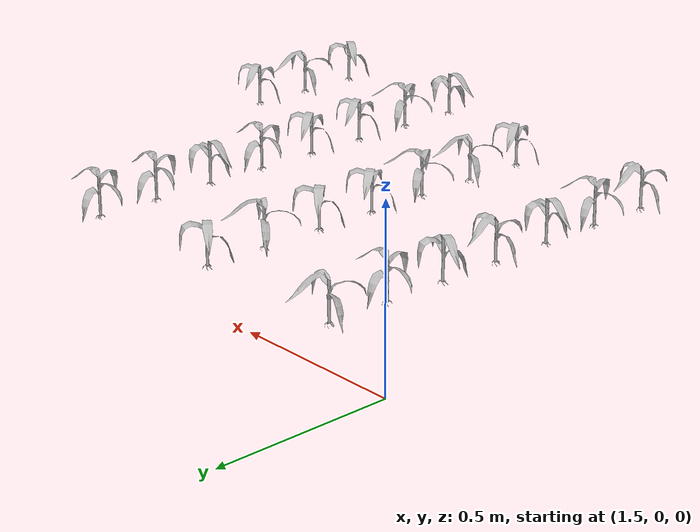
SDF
<sdf version="1.7">
 <world name="default">
  <model name="maize_1.8369094047028893_-1.2899999999999996">
   <static>1</static>
   <link name="link">
    <inertial>
     <mass>0.2</mass>
     <inertia>
      <ixx>0.166667</ixx>
      <ixy>0</ixy>
      <ixz>0</ixz>
      <iyy>0.166667</iyy>
      <iyz>0</iyz>
      <izz>0.166667</izz>
     </inertia>
    </inertial>
    <collision name="collision">
     <geometry><mesh><uri>model://corn_3/meshes/corn.dae</uri><scale>0.25 0.25 0.25</scale></mesh></geometry>
     <surface>
      <friction><ode><mu>0</mu><mu2>0</mu2></ode></friction>
      <contact><ode><kp>0</kp><kd>0</kd><max_vel>0</max_vel><min_depth>0.002</min_depth></ode></contact>
     </surface>
    </collision>
    <visual name="visual">
     <geometry><mesh><uri>model://corn_3/meshes/corn.dae</uri><scale>0.25 0.25 0.25</scale></mesh></geometry>
    </visual>
    <velocity_decay><linear>0</linear><angular>0</angular></velocity_decay>
   </link>
   <pose>1.83691 -1.29 0.05 0 -0 1.59255</pose>
  </model>
  <model name="maize_1.8369094047028893_-1.0949999999999998">
   <static>1</static>
   <link name="link">
    <inertial>
     <mass>0.2</mass>
     <inertia>
      <ixx>0.166667</ixx>
      <ixy>0</ixy>
      <ixz>0</ixz>
      <iyy>0.166667</iyy>
      <iyz>0</iyz>
      <izz>0.166667</izz>
     </inertia>
    </inertial>
    <collision name="collision">
     <geometry><mesh><uri>model://corn_3/meshes/corn.dae</uri><scale>0.25 0.25 0.25</scale></mesh></geometry>
     <surface>
      <friction><ode><mu>0</mu><mu2>0</mu2></ode></friction>
      <contact><ode><kp>0</kp><kd>0</kd><max_vel>0</max_vel><min_depth>0.002</min_depth></ode></contact>
     </surface>
    </collision>
    <visual name="visual">
     <geometry><mesh><uri>model://corn_3/meshes/corn.dae</uri><scale>0.25 0.25 0.25</scale></mesh></geometry>
    </visual>
    <velocity_decay><linear>0</linear><angular>0</angular></velocity_decay>
   </link>
   <pose>1.83691 -1.095 0.05 0 -0 0.184959</pose>
  </model>
  <model name="maize_1.8369094047028893_-0.8999999999999995">
   <static>1</static>
   <link name="link">
    <inertial>
     <mass>0.2</mass>
     <inertia>
      <ixx>0.166667</ixx>
      <ixy>0</ixy>
      <ixz>0</ixz>
      <iyy>0.166667</iyy>
      <iyz>0</iyz>
      <izz>0.166667</izz>
     </inertia>
    </inertial>
    <collision name="collision">
     <geometry><mesh><uri>model://corn_3/meshes/corn.dae</uri><scale>0.25 0.25 0.25</scale></mesh></geometry>
     <surface>
      <friction><ode><mu>0</mu><mu2>0</mu2></ode></friction>
      <contact><ode><kp>0</kp><kd>0</kd><max_vel>0</max_vel><min_depth>0.002</min_depth></ode></contact>
     </surface>
    </collision>
    <visual name="visual">
     <geometry><mesh><uri>model://corn_3/meshes/corn.dae</uri><scale>0.25 0.25 0.25</scale></mesh></geometry>
    </visual>
    <velocity_decay><linear>0</linear><angular>0</angular></velocity_decay>
   </link>
   <pose>1.83691 -0.9 0.05 0 -0 2.9175</pose>
  </model>
  <model name="maize_1.8369094047028893_-0.7050000000000001">
   <static>1</static>
   <link name="link">
    <inertial>
     <mass>0.2</mass>
     <inertia>
      <ixx>0.166667</ixx>
      <ixy>0</ixy>
      <ixz>0</ixz>
      <iyy>0.166667</iyy>
      <iyz>0</iyz>
      <izz>0.166667</izz>
     </inertia>
    </inertial>
    <collision name="collision">
     <geometry><mesh><uri>model://corn_3/meshes/corn.dae</uri><scale>0.25 0.25 0.25</scale></mesh></geometry>
     <surface>
      <friction><ode><mu>0</mu><mu2>0</mu2></ode></friction>
      <contact><ode><kp>0</kp><kd>0</kd><max_vel>0</max_vel><min_depth>0.002</min_depth></ode></contact>
     </surface>
    </collision>
    <visual name="visual">
     <geometry><mesh><uri>model://corn_3/meshes/corn.dae</uri><scale>0.25 0.25 0.25</scale></mesh></geometry>
    </visual>
    <velocity_decay><linear>0</linear><angular>0</angular></velocity_decay>
   </link>
   <pose>1.83691 -0.705 0.05 0 -0 1.69886</pose>
  </model>
  <model name="maize_1.8369094047028893_-0.5099999999999998">
   <static>1</static>
   <link name="link">
    <inertial>
     <mass>0.2</mass>
     <inertia>
      <ixx>0.166667</ixx>
      <ixy>0</ixy>
      <ixz>0</ixz>
      <iyy>0.166667</iyy>
      <iyz>0</iyz>
      <izz>0.166667</izz>
     </inertia>
    </inertial>
    <collision name="collision">
     <geometry><mesh><uri>model://corn_3/meshes/corn.dae</uri><scale>0.25 0.25 0.25</scale></mesh></geometry>
     <surface>
      <friction><ode><mu>0</mu><mu2>0</mu2></ode></friction>
      <contact><ode><kp>0</kp><kd>0</kd><max_vel>0</max_vel><min_depth>0.002</min_depth></ode></contact>
     </surface>
    </collision>
    <visual name="visual">
     <geometry><mesh><uri>model://corn_3/meshes/corn.dae</uri><scale>0.25 0.25 0.25</scale></mesh></geometry>
    </visual>
    <velocity_decay><linear>0</linear><angular>0</angular></velocity_decay>
   </link>
   <pose>1.83691 -0.51 0.05 0 -0 2.77115</pose>
  </model>
  <model name="maize_1.8369094047028893_-0.3149999999999995">
   <static>1</static>
   <link name="link">
    <inertial>
     <mass>0.2</mass>
     <inertia>
      <ixx>0.166667</ixx>
      <ixy>0</ixy>
      <ixz>0</ixz>
      <iyy>0.166667</iyy>
      <iyz>0</iyz>
      <izz>0.166667</izz>
     </inertia>
    </inertial>
    <collision name="collision">
     <geometry><mesh><uri>model://corn_3/meshes/corn.dae</uri><scale>0.25 0.25 0.25</scale></mesh></geometry>
     <surface>
      <friction><ode><mu>0</mu><mu2>0</mu2></ode></friction>
      <contact><ode><kp>0</kp><kd>0</kd><max_vel>0</max_vel><min_depth>0.002</min_depth></ode></contact>
     </surface>
    </collision>
    <visual name="visual">
     <geometry><mesh><uri>model://corn_3/meshes/corn.dae</uri><scale>0.25 0.25 0.25</scale></mesh></geometry>
    </visual>
    <velocity_decay><linear>0</linear><angular>0</angular></velocity_decay>
   </link>
   <pose>1.83691 -0.315 0.05 0 -0 0.031609</pose>
  </model>
  <model name="maize_1.8369094047028893_-0.1200000000000001">
   <static>1</static>
   <link name="link">
    <inertial>
     <mass>0.2</mass>
     <inertia>
      <ixx>0.166667</ixx>
      <ixy>0</ixy>
      <ixz>0</ixz>
      <iyy>0.166667</iyy>
      <iyz>0</iyz>
      <izz>0.166667</izz>
     </inertia>
    </inertial>
    <collision name="collision">
     <geometry><mesh><uri>model://corn_3/meshes/corn.dae</uri><scale>0.25 0.25 0.25</scale></mesh></geometry>
     <surface>
      <friction><ode><mu>0</mu><mu2>0</mu2></ode></friction>
      <contact><ode><kp>0</kp><kd>0</kd><max_vel>0</max_vel><min_depth>0.002</min_depth></ode></contact>
     </surface>
    </collision>
    <visual name="visual">
     <geometry><mesh><uri>model://corn_3/meshes/corn.dae</uri><scale>0.25 0.25 0.25</scale></mesh></geometry>
    </visual>
    <velocity_decay><linear>0</linear><angular>0</angular></velocity_decay>
   </link>
   <pose>1.83691 -0.12 0.05 0 -0 1.34692</pose>
  </model>
  <model name="maize_2.3268572397762357_-1.2899999999999996">
   <static>1</static>
   <link name="link">
    <inertial>
     <mass>0.2</mass>
     <inertia>
      <ixx>0.166667</ixx>
      <ixy>0</ixy>
      <ixz>0</ixz>
      <iyy>0.166667</iyy>
      <iyz>0</iyz>
      <izz>0.166667</izz>
     </inertia>
    </inertial>
    <collision name="collision">
     <geometry><mesh><uri>model://corn_3/meshes/corn.dae</uri><scale>0.25 0.25 0.25</scale></mesh></geometry>
     <surface>
      <friction><ode><mu>0</mu><mu2>0</mu2></ode></friction>
      <contact><ode><kp>0</kp><kd>0</kd><max_vel>0</max_vel><min_depth>0.002</min_depth></ode></contact>
     </surface>
    </collision>
    <visual name="visual">
     <geometry><mesh><uri>model://corn_3/meshes/corn.dae</uri><scale>0.25 0.25 0.25</scale></mesh></geometry>
    </visual>
    <velocity_decay><linear>0</linear><angular>0</angular></velocity_decay>
   </link>
   <pose>2.32686 -1.29 0.05 0 -0 2.11686</pose>
  </model>
  <model name="maize_2.3268572397762357_-1.0949999999999998">
   <static>1</static>
   <link name="link">
    <inertial>
     <mass>0.2</mass>
     <inertia>
      <ixx>0.166667</ixx>
      <ixy>0</ixy>
      <ixz>0</ixz>
      <iyy>0.166667</iyy>
      <iyz>0</iyz>
      <izz>0.166667</izz>
     </inertia>
    </inertial>
    <collision name="collision">
     <geometry><mesh><uri>model://corn_3/meshes/corn.dae</uri><scale>0.25 0.25 0.25</scale></mesh></geometry>
     <surface>
      <friction><ode><mu>0</mu><mu2>0</mu2></ode></friction>
      <contact><ode><kp>0</kp><kd>0</kd><max_vel>0</max_vel><min_depth>0.002</min_depth></ode></contact>
     </surface>
    </collision>
    <visual name="visual">
     <geometry><mesh><uri>model://corn_3/meshes/corn.dae</uri><scale>0.25 0.25 0.25</scale></mesh></geometry>
    </visual>
    <velocity_decay><linear>0</linear><angular>0</angular></velocity_decay>
   </link>
   <pose>2.32686 -1.095 0.05 0 -0 1.15651</pose>
  </model>
  <model name="maize_2.3268572397762357_-0.8999999999999995">
   <static>1</static>
   <link name="link">
    <inertial>
     <mass>0.2</mass>
     <inertia>
      <ixx>0.166667</ixx>
      <ixy>0</ixy>
      <ixz>0</ixz>
      <iyy>0.166667</iyy>
      <iyz>0</iyz>
      <izz>0.166667</izz>
     </inertia>
    </inertial>
    <collision name="collision">
     <geometry><mesh><uri>model://corn_3/meshes/corn.dae</uri><scale>0.25 0.25 0.25</scale></mesh></geometry>
     <surface>
      <friction><ode><mu>0</mu><mu2>0</mu2></ode></friction>
      <contact><ode><kp>0</kp><kd>0</kd><max_vel>0</max_vel><min_depth>0.002</min_depth></ode></contact>
     </surface>
    </collision>
    <visual name="visual">
     <geometry><mesh><uri>model://corn_3/meshes/corn.dae</uri><scale>0.25 0.25 0.25</scale></mesh></geometry>
    </visual>
    <velocity_decay><linear>0</linear><angular>0</angular></velocity_decay>
   </link>
   <pose>2.32686 -0.9 0.05 0 -0 0.523839</pose>
  </model>
  <model name="maize_2.3268572397762357_-0.7050000000000001">
   <static>1</static>
   <link name="link">
    <inertial>
     <mass>0.2</mass>
     <inertia>
      <ixx>0.166667</ixx>
      <ixy>0</ixy>
      <ixz>0</ixz>
      <iyy>0.166667</iyy>
      <iyz>0</iyz>
      <izz>0.166667</izz>
     </inertia>
    </inertial>
    <collision name="collision">
     <geometry><mesh><uri>model://corn_3/meshes/corn.dae</uri><scale>0.25 0.25 0.25</scale></mesh></geometry>
     <surface>
      <friction><ode><mu>0</mu><mu2>0</mu2></ode></friction>
      <contact><ode><kp>0</kp><kd>0</kd><max_vel>0</max_vel><min_depth>0.002</min_depth></ode></contact>
     </surface>
    </collision>
    <visual name="visual">
     <geometry><mesh><uri>model://corn_3/meshes/corn.dae</uri><scale>0.25 0.25 0.25</scale></mesh></geometry>
    </visual>
    <velocity_decay><linear>0</linear><angular>0</angular></velocity_decay>
   </link>
   <pose>2.32686 -0.705 0.05 0 -0 2.25076</pose>
  </model>
  <model name="maize_2.3268572397762357_-0.5099999999999998">
   <static>1</static>
   <link name="link">
    <inertial>
     <mass>0.2</mass>
     <inertia>
      <ixx>0.166667</ixx>
      <ixy>0</ixy>
      <ixz>0</ixz>
      <iyy>0.166667</iyy>
      <iyz>0</iyz>
      <izz>0.166667</izz>
     </inertia>
    </inertial>
    <collision name="collision">
     <geometry><mesh><uri>model://corn_3/meshes/corn.dae</uri><scale>0.25 0.25 0.25</scale></mesh></geometry>
     <surface>
      <friction><ode><mu>0</mu><mu2>0</mu2></ode></friction>
      <contact><ode><kp>0</kp><kd>0</kd><max_vel>0</max_vel><min_depth>0.002</min_depth></ode></contact>
     </surface>
    </collision>
    <visual name="visual">
     <geometry><mesh><uri>model://corn_3/meshes/corn.dae</uri><scale>0.25 0.25 0.25</scale></mesh></geometry>
    </visual>
    <velocity_decay><linear>0</linear><angular>0</angular></velocity_decay>
   </link>
   <pose>2.32686 -0.51 0.05 0 -0 2.42702</pose>
  </model>
  <model name="maize_2.3268572397762357_-0.3149999999999995">
   <static>1</static>
   <link name="link">
    <inertial>
     <mass>0.2</mass>
     <inertia>
      <ixx>0.166667</ixx>
      <ixy>0</ixy>
      <ixz>0</ixz>
      <iyy>0.166667</iyy>
      <iyz>0</iyz>
      <izz>0.166667</izz>
     </inertia>
    </inertial>
    <collision name="collision">
     <geometry><mesh><uri>model://corn_3/meshes/corn.dae</uri><scale>0.25 0.25 0.25</scale></mesh></geometry>
     <surface>
      <friction><ode><mu>0</mu><mu2>0</mu2></ode></friction>
      <contact><ode><kp>0</kp><kd>0</kd><max_vel>0</max_vel><min_depth>0.002</min_depth></ode></contact>
     </surface>
    </collision>
    <visual name="visual">
     <geometry><mesh><uri>model://corn_3/meshes/corn.dae</uri><scale>0.25 0.25 0.25</scale></mesh></geometry>
    </visual>
    <velocity_decay><linear>0</linear><angular>0</angular></velocity_decay>
   </link>
   <pose>2.32686 -0.315 0.05 0 -0 0.965278</pose>
  </model>
  <model name="maize_2.3268572397762357_-0.1200000000000001">
   <static>1</static>
   <link name="link">
    <inertial>
     <mass>0.2</mass>
     <inertia>
      <ixx>0.166667</ixx>
      <ixy>0</ixy>
      <ixz>0</ixz>
      <iyy>0.166667</iyy>
      <iyz>0</iyz>
      <izz>0.166667</izz>
     </inertia>
    </inertial>
    <collision name="collision">
     <geometry><mesh><uri>model://corn_3/meshes/corn.dae</uri><scale>0.25 0.25 0.25</scale></mesh></geometry>
     <surface>
      <friction><ode><mu>0</mu><mu2>0</mu2></ode></friction>
      <contact><ode><kp>0</kp><kd>0</kd><max_vel>0</max_vel><min_depth>0.002</min_depth></ode></contact>
     </surface>
    </collision>
    <visual name="visual">
     <geometry><mesh><uri>model://corn_3/meshes/corn.dae</uri><scale>0.25 0.25 0.25</scale></mesh></geometry>
    </visual>
    <velocity_decay><linear>0</linear><angular>0</angular></velocity_decay>
   </link>
   <pose>2.32686 -0.12 0.05 0 -0 2.56813</pose>
  </model>
  <model name="maize_2.816066532335432_-1.4849999999999999">
   <static>1</static>
   <link name="link">
    <inertial>
     <mass>0.2</mass>
     <inertia>
      <ixx>0.166667</ixx>
      <ixy>0</ixy>
      <ixz>0</ixz>
      <iyy>0.166667</iyy>
      <iyz>0</iyz>
      <izz>0.166667</izz>
     </inertia>
    </inertial>
    <collision name="collision">
     <geometry><mesh><uri>model://corn_3/meshes/corn.dae</uri><scale>0.25 0.25 0.25</scale></mesh></geometry>
     <surface>
      <friction><ode><mu>0</mu><mu2>0</mu2></ode></friction>
      <contact><ode><kp>0</kp><kd>0</kd><max_vel>0</max_vel><min_depth>0.002</min_depth></ode></contact>
     </surface>
    </collision>
    <visual name="visual">
     <geometry><mesh><uri>model://corn_3/meshes/corn.dae</uri><scale>0.25 0.25 0.25</scale></mesh></geometry>
    </visual>
    <velocity_decay><linear>0</linear><angular>0</angular></velocity_decay>
   </link>
   <pose>2.81607 -1.485 0.05 0 -0 3.114</pose>
  </model>
  <model name="maize_2.816066532335432_-1.2899999999999996">
   <static>1</static>
   <link name="link">
    <inertial>
     <mass>0.2</mass>
     <inertia>
      <ixx>0.166667</ixx>
      <ixy>0</ixy>
      <ixz>0</ixz>
      <iyy>0.166667</iyy>
      <iyz>0</iyz>
      <izz>0.166667</izz>
     </inertia>
    </inertial>
    <collision name="collision">
     <geometry><mesh><uri>model://corn_3/meshes/corn.dae</uri><scale>0.25 0.25 0.25</scale></mesh></geometry>
     <surface>
      <friction><ode><mu>0</mu><mu2>0</mu2></ode></friction>
      <contact><ode><kp>0</kp><kd>0</kd><max_vel>0</max_vel><min_depth>0.002</min_depth></ode></contact>
     </surface>
    </collision>
    <visual name="visual">
     <geometry><mesh><uri>model://corn_3/meshes/corn.dae</uri><scale>0.25 0.25 0.25</scale></mesh></geometry>
    </visual>
    <velocity_decay><linear>0</linear><angular>0</angular></velocity_decay>
   </link>
   <pose>2.81607 -1.29 0.05 0 -0 0.403729</pose>
  </model>
  <model name="maize_2.816066532335432_-1.0949999999999998">
   <static>1</static>
   <link name="link">
    <inertial>
     <mass>0.2</mass>
     <inertia>
      <ixx>0.166667</ixx>
      <ixy>0</ixy>
      <ixz>0</ixz>
      <iyy>0.166667</iyy>
      <iyz>0</iyz>
      <izz>0.166667</izz>
     </inertia>
    </inertial>
    <collision name="collision">
     <geometry><mesh><uri>model://corn_3/meshes/corn.dae</uri><scale>0.25 0.25 0.25</scale></mesh></geometry>
     <surface>
      <friction><ode><mu>0</mu><mu2>0</mu2></ode></friction>
      <contact><ode><kp>0</kp><kd>0</kd><max_vel>0</max_vel><min_depth>0.002</min_depth></ode></contact>
     </surface>
    </collision>
    <visual name="visual">
     <geometry><mesh><uri>model://corn_3/meshes/corn.dae</uri><scale>0.25 0.25 0.25</scale></mesh></geometry>
    </visual>
    <velocity_decay><linear>0</linear><angular>0</angular></velocity_decay>
   </link>
   <pose>2.81607 -1.095 0.05 0 -0 2.07102</pose>
  </model>
  <model name="maize_2.816066532335432_-0.8999999999999995">
   <static>1</static>
   <link name="link">
    <inertial>
     <mass>0.2</mass>
     <inertia>
      <ixx>0.166667</ixx>
      <ixy>0</ixy>
      <ixz>0</ixz>
      <iyy>0.166667</iyy>
      <iyz>0</iyz>
      <izz>0.166667</izz>
     </inertia>
    </inertial>
    <collision name="collision">
     <geometry><mesh><uri>model://corn_3/meshes/corn.dae</uri><scale>0.25 0.25 0.25</scale></mesh></geometry>
     <surface>
      <friction><ode><mu>0</mu><mu2>0</mu2></ode></friction>
      <contact><ode><kp>0</kp><kd>0</kd><max_vel>0</max_vel><min_depth>0.002</min_depth></ode></contact>
     </surface>
    </collision>
    <visual name="visual">
     <geometry><mesh><uri>model://corn_3/meshes/corn.dae</uri><scale>0.25 0.25 0.25</scale></mesh></geometry>
    </visual>
    <velocity_decay><linear>0</linear><angular>0</angular></velocity_decay>
   </link>
   <pose>2.81607 -0.9 0.05 0 -0 2.20186</pose>
  </model>
  <model name="maize_2.816066532335432_-0.7050000000000001">
   <static>1</static>
   <link name="link">
    <inertial>
     <mass>0.2</mass>
     <inertia>
      <ixx>0.166667</ixx>
      <ixy>0</ixy>
      <ixz>0</ixz>
      <iyy>0.166667</iyy>
      <iyz>0</iyz>
      <izz>0.166667</izz>
     </inertia>
    </inertial>
    <collision name="collision">
     <geometry><mesh><uri>model://corn_3/meshes/corn.dae</uri><scale>0.25 0.25 0.25</scale></mesh></geometry>
     <surface>
      <friction><ode><mu>0</mu><mu2>0</mu2></ode></friction>
      <contact><ode><kp>0</kp><kd>0</kd><max_vel>0</max_vel><min_depth>0.002</min_depth></ode></contact>
     </surface>
    </collision>
    <visual name="visual">
     <geometry><mesh><uri>model://corn_3/meshes/corn.dae</uri><scale>0.25 0.25 0.25</scale></mesh></geometry>
    </visual>
    <velocity_decay><linear>0</linear><angular>0</angular></velocity_decay>
   </link>
   <pose>2.81607 -0.705 0.05 0 -0 0.045144</pose>
  </model>
  <model name="maize_2.816066532335432_-0.5099999999999998">
   <static>1</static>
   <link name="link">
    <inertial>
     <mass>0.2</mass>
     <inertia>
      <ixx>0.166667</ixx>
      <ixy>0</ixy>
      <ixz>0</ixz>
      <iyy>0.166667</iyy>
      <iyz>0</iyz>
      <izz>0.166667</izz>
     </inertia>
    </inertial>
    <collision name="collision">
     <geometry><mesh><uri>model://corn_3/meshes/corn.dae</uri><scale>0.25 0.25 0.25</scale></mesh></geometry>
     <surface>
      <friction><ode><mu>0</mu><mu2>0</mu2></ode></friction>
      <contact><ode><kp>0</kp><kd>0</kd><max_vel>0</max_vel><min_depth>0.002</min_depth></ode></contact>
     </surface>
    </collision>
    <visual name="visual">
     <geometry><mesh><uri>model://corn_3/meshes/corn.dae</uri><scale>0.25 0.25 0.25</scale></mesh></geometry>
    </visual>
    <velocity_decay><linear>0</linear><angular>0</angular></velocity_decay>
   </link>
   <pose>2.81607 -0.51 0.05 0 -0 3.07884</pose>
  </model>
  <model name="maize_2.816066532335432_-0.3149999999999995">
   <static>1</static>
   <link name="link">
    <inertial>
     <mass>0.2</mass>
     <inertia>
      <ixx>0.166667</ixx>
      <ixy>0</ixy>
      <ixz>0</ixz>
      <iyy>0.166667</iyy>
      <iyz>0</iyz>
      <izz>0.166667</izz>
     </inertia>
    </inertial>
    <collision name="collision">
     <geometry><mesh><uri>model://corn_3/meshes/corn.dae</uri><scale>0.25 0.25 0.25</scale></mesh></geometry>
     <surface>
      <friction><ode><mu>0</mu><mu2>0</mu2></ode></friction>
      <contact><ode><kp>0</kp><kd>0</kd><max_vel>0</max_vel><min_depth>0.002</min_depth></ode></contact>
     </surface>
    </collision>
    <visual name="visual">
     <geometry><mesh><uri>model://corn_3/meshes/corn.dae</uri><scale>0.25 0.25 0.25</scale></mesh></geometry>
    </visual>
    <velocity_decay><linear>0</linear><angular>0</angular></velocity_decay>
   </link>
   <pose>2.81607 -0.315 0.05 0 -0 0.021663</pose>
  </model>
  <model name="maize_2.816066532335432_-0.1200000000000001">
   <static>1</static>
   <link name="link">
    <inertial>
     <mass>0.2</mass>
     <inertia>
      <ixx>0.166667</ixx>
      <ixy>0</ixy>
      <ixz>0</ixz>
      <iyy>0.166667</iyy>
      <iyz>0</iyz>
      <izz>0.166667</izz>
     </inertia>
    </inertial>
    <collision name="collision">
     <geometry><mesh><uri>model://corn_3/meshes/corn.dae</uri><scale>0.25 0.25 0.25</scale></mesh></geometry>
     <surface>
      <friction><ode><mu>0</mu><mu2>0</mu2></ode></friction>
      <contact><ode><kp>0</kp><kd>0</kd><max_vel>0</max_vel><min_depth>0.002</min_depth></ode></contact>
     </surface>
    </collision>
    <visual name="visual">
     <geometry><mesh><uri>model://corn_3/meshes/corn.dae</uri><scale>0.25 0.25 0.25</scale></mesh></geometry>
    </visual>
    <velocity_decay><linear>0</linear><angular>0</angular></velocity_decay>
   </link>
   <pose>2.81607 -0.12 0.05 0 -0 0.178418</pose>
  </model>
  <model name="maize_3.304538114598593_-1.4849999999999999">
   <static>1</static>
   <link name="link">
    <inertial>
     <mass>0.2</mass>
     <inertia>
      <ixx>0.166667</ixx>
      <ixy>0</ixy>
      <ixz>0</ixz>
      <iyy>0.166667</iyy>
      <iyz>0</iyz>
      <izz>0.166667</izz>
     </inertia>
    </inertial>
    <collision name="collision">
     <geometry><mesh><uri>model://corn_3/meshes/corn.dae</uri><scale>0.25 0.25 0.25</scale></mesh></geometry>
     <surface>
      <friction><ode><mu>0</mu><mu2>0</mu2></ode></friction>
      <contact><ode><kp>0</kp><kd>0</kd><max_vel>0</max_vel><min_depth>0.002</min_depth></ode></contact>
     </surface>
    </collision>
    <visual name="visual">
     <geometry><mesh><uri>model://corn_3/meshes/corn.dae</uri><scale>0.25 0.25 0.25</scale></mesh></geometry>
    </visual>
    <velocity_decay><linear>0</linear><angular>0</angular></velocity_decay>
   </link>
   <pose>3.30454 -1.485 0.05 0 -0 2.64914</pose>
  </model>
  <model name="maize_3.304538114598593_-1.2899999999999996">
   <static>1</static>
   <link name="link">
    <inertial>
     <mass>0.2</mass>
     <inertia>
      <ixx>0.166667</ixx>
      <ixy>0</ixy>
      <ixz>0</ixz>
      <iyy>0.166667</iyy>
      <iyz>0</iyz>
      <izz>0.166667</izz>
     </inertia>
    </inertial>
    <collision name="collision">
     <geometry><mesh><uri>model://corn_3/meshes/corn.dae</uri><scale>0.25 0.25 0.25</scale></mesh></geometry>
     <surface>
      <friction><ode><mu>0</mu><mu2>0</mu2></ode></friction>
      <contact><ode><kp>0</kp><kd>0</kd><max_vel>0</max_vel><min_depth>0.002</min_depth></ode></contact>
     </surface>
    </collision>
    <visual name="visual">
     <geometry><mesh><uri>model://corn_3/meshes/corn.dae</uri><scale>0.25 0.25 0.25</scale></mesh></geometry>
    </visual>
    <velocity_decay><linear>0</linear><angular>0</angular></velocity_decay>
   </link>
   <pose>3.30454 -1.29 0.05 0 -0 1.38554</pose>
  </model>
  <model name="maize_3.304538114598593_-1.0949999999999998">
   <static>1</static>
   <link name="link">
    <inertial>
     <mass>0.2</mass>
     <inertia>
      <ixx>0.166667</ixx>
      <ixy>0</ixy>
      <ixz>0</ixz>
      <iyy>0.166667</iyy>
      <iyz>0</iyz>
      <izz>0.166667</izz>
     </inertia>
    </inertial>
    <collision name="collision">
     <geometry><mesh><uri>model://corn_3/meshes/corn.dae</uri><scale>0.25 0.25 0.25</scale></mesh></geometry>
     <surface>
      <friction><ode><mu>0</mu><mu2>0</mu2></ode></friction>
      <contact><ode><kp>0</kp><kd>0</kd><max_vel>0</max_vel><min_depth>0.002</min_depth></ode></contact>
     </surface>
    </collision>
    <visual name="visual">
     <geometry><mesh><uri>model://corn_3/meshes/corn.dae</uri><scale>0.25 0.25 0.25</scale></mesh></geometry>
    </visual>
    <velocity_decay><linear>0</linear><angular>0</angular></velocity_decay>
   </link>
   <pose>3.30454 -1.095 0.05 0 -0 2.09366</pose>
  </model>
 </world>
</sdf>
